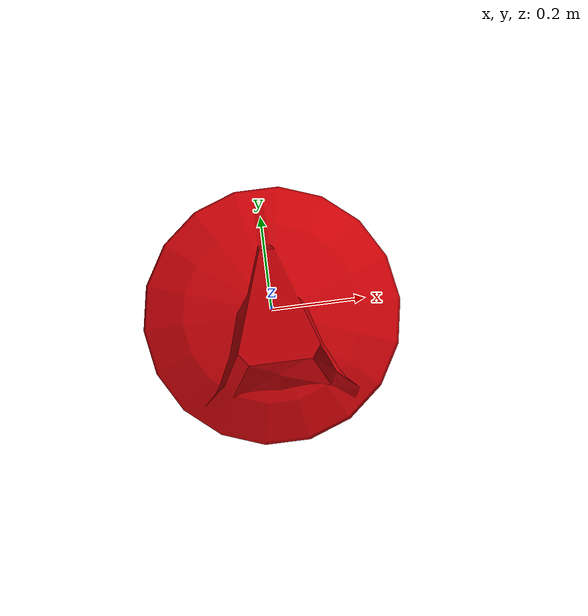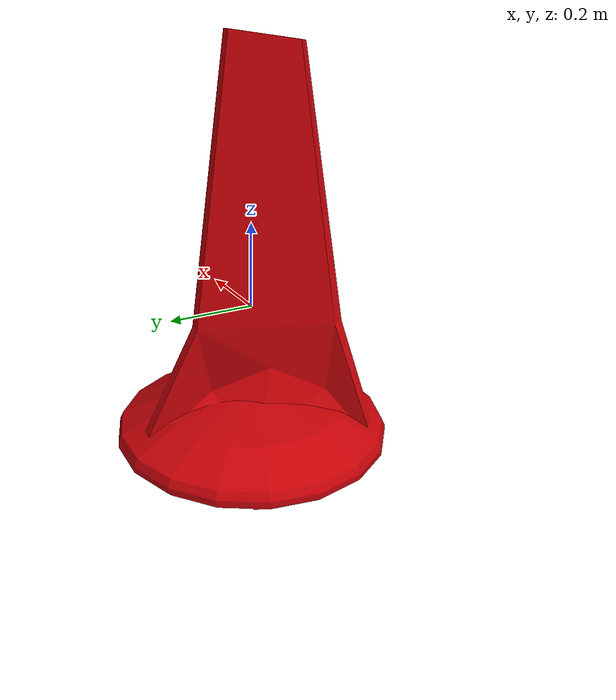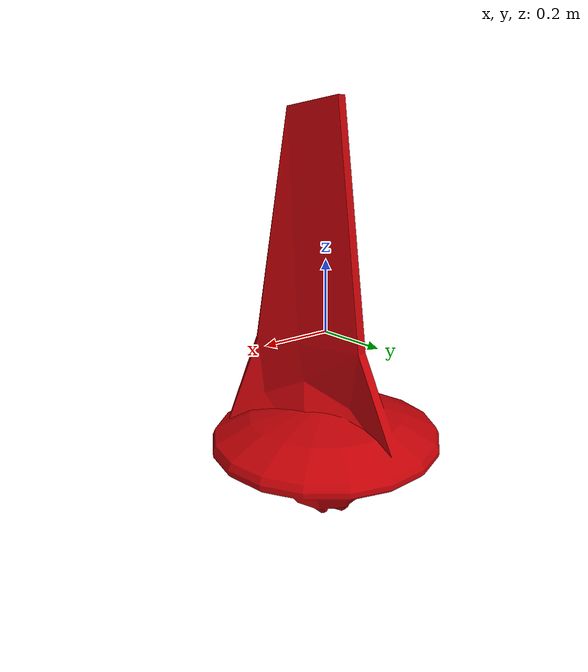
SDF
<?xml version="1.0" ?>
<sdf version="1.9">
    <model name="mb_marker_buoy_red">
        <link name="link">
            <inertial>
                <pose>0 0 -0.3 0 0 0</pose>
                <mass>20</mass>
                <inertia>
                    <ixx>2.316</ixx>
                    <ixy>0</ixy>
                    <ixz>0</ixz>
                    <iyy>2.316</iyy>
                    <iyz>0</iyz>
                    <izz>0.225</izz>
                </inertia>
            </inertial>
            <collision name="collision_inner">
                <pose>0 -0.02 0.02 0 0 0</pose>
                <geometry>
                    <cylinder>
                        <radius>0.15</radius>
                        <length>1.15</length>
                    </cylinder>
                </geometry>
            </collision>
            <collision name="collision_outer">
                <pose>0 0 -0.3 0 0 0</pose>
                <geometry>
                    <cylinder>
                        <radius>0.325</radius>
                        <length>0.1</length>
                    </cylinder>
                </geometry>
            </collision>
            <visual name="visual">
                <pose>0 0 0 1.57079 0 0</pose>
                <geometry>
                    <mesh>
                        <uri>meshes/mb_marker_buoy.dae</uri>
                    </mesh>
                </geometry>
                <material>
                    <ambient>0.7921 0.0039 0.0274</ambient>
                    <diffuse>0.7921 0.0039 0.0274</diffuse>
                    <specular>0.7921 0.0039 0.0274 1</specular>
                    <pbr>
                        <metal>
                            <roughness_map>materials/textures/MarkerBuoy_Roughness.png</roughness_map>
                        </metal>
                    </pbr>
                </material>
            </visual>
        </link>

              <plugin name="wamv_gazebo::PolyhedraBuoyancyDrag"
              filename="libPolyhedraBuoyancyDrag.so">
        <fluid_density>1000</fluid_density>
        <fluid_level>0.0</fluid_level>
        <linear_drag>25.0</linear_drag>
        <angular_drag>2.0</angular_drag>
        <buoyancy name="collision_outer">
          <link_name>link</link_name>
          <pose>0 0 -0.3 0 0 0</pose>
          <geometry>
            <cylinder>
              <radius>0.325</radius>
              <length>0.1</length>
            </cylinder>
          </geometry>
        </buoyancy>
        <wavefield>
          <topic>/wamv_gazebo/wavefield/parameters</topic>
        </wavefield>
      </plugin>

    </model>
</sdf>
